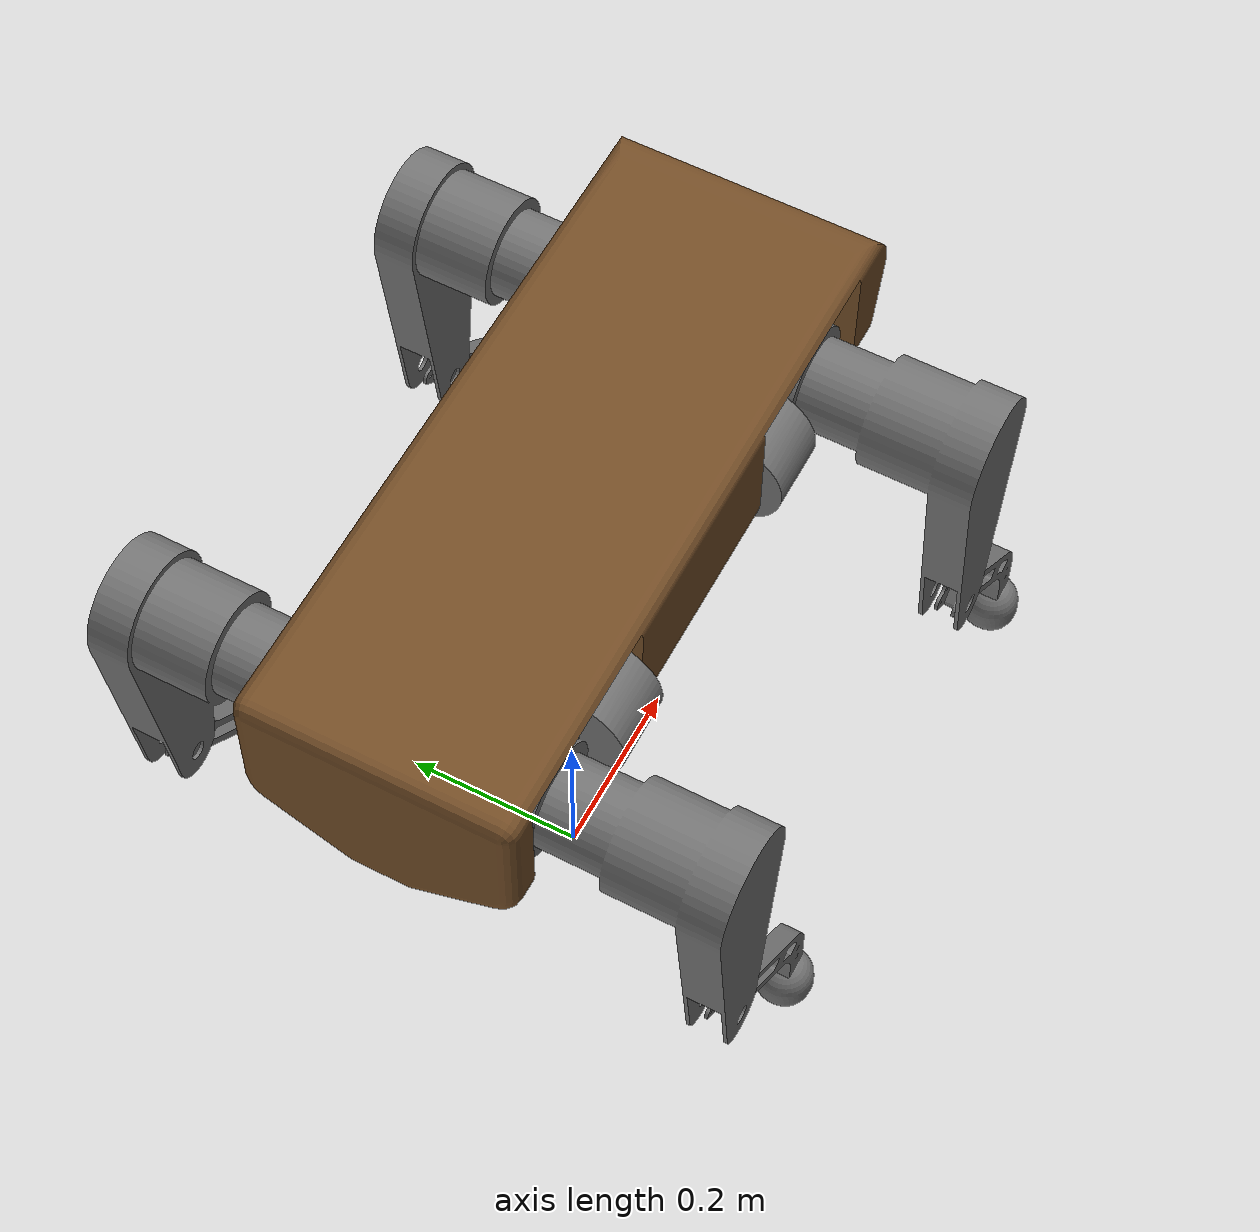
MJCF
<mujoco model="franki">
  <compiler angle="radian" meshdir="assets" texturedir="assets" autolimits="true"/>

  <option cone="elliptic" impratio="100"/>

  <default>
    <default class="franki">
      <geom friction="0.6" margin="0.001"/>
      <joint axis="0 1 0" damping="2" armature="0.01" frictionloss="0.2"/>
      <position kp="100" forcerange="-33.5 33.5"/>
      <default class="abduction">
        <joint axis="1 0 0" damping="1" range="-0.802851 0.802851"/>
        <position ctrlrange="-0.802851 0.802851"/>
      </default>
      <default class="hip">
        <joint range="-1.0472 1.3"/>
        <position ctrlrange="-1.0472 1.3"/>
      </default>
      <default class="knee">
        <joint range="-1.6 0.5"/>
        <position ctrlrange="-1.6 0.5"/>
      </default>
      <default class="visual">
        <geom type="mesh" contype="0" conaffinity="0" group="2" material="dark"/>
      </default>
      <default class="collision">
        <geom group="3" type="capsule"/>
        <default class="hip_left">
          <geom size="0.04 0.04" quat="1 1 0 0" type="cylinder" pos="0 0.055 0"/>
        </default>
        <default class="hip_right">
          <geom size="0.04 0.04" quat="1 1 0 0" type="cylinder" pos="0 -0.055 0"/>
        </default>
        <default class="thigh1">
          <geom size="0.015" fromto="-0.02 0 0 -0.02 0 -0.16"/>
        </default>
        <default class="thigh2">
          <geom size="0.015" fromto="0 0 0 -0.02 0 -0.1"/>
        </default>
        <default class="thigh3">
          <geom size="0.015" fromto="-0.02 0 -0.16 0 0 -0.2"/>
        </default>
        <default class="calf1">
          <geom size="0.01" fromto="0 0 0 0.02 0 -0.13"/>
        </default>
        <default class="calf2">
          <geom size="0.01" fromto="0.02 0 -0.13 0 0 -0.2"/>
        </default>
        <default class="foot">
          <geom type="sphere" size="0.035" pos="0.16 0 -0.247" priority="1" solimp="0.015 1 0.031" condim="6"
            friction="0.8 0.02 0.01"/>
        </default>
      </default>
    </default>
  </default>

  <asset>
    <material name="dark" specular="0" shininess="0.25" rgba="0.45 0.45 0.45 1"/>
    <texture type="2d" name="trunk_franki" file="trunk_franki.png"/>
    <material name="carbonfibre" texture="trunk_franki" specular="0" shininess="0.25"/>

    <mesh class="franki" file="calf_franki.obj"/>
    <mesh class="franki" file="hip_franki.obj"/>
    <mesh class="franki" file="thigh_franki.obj"/>
    <mesh class="franki" file="thigh_mirror_franki.obj"/>
    <mesh class="franki" file="trunk_franki.obj"/>
  </asset>

  <worldbody>
    <light name="spotlight" mode="targetbodycom" target="trunk" pos="0 -1 2"/>
    <body name="trunk" pos="0 0 0.63" childclass="franki">
      <freejoint/>
      <inertial mass="7.5" pos="0 0.0041 -0.0005"
        fullinertia="0.0158533 0.0377999 0.0456542 -3.66e-05 -6.11e-05 -2.75e-05"/>
      <geom class="visual" mesh="trunk_franki" material="carbonfibre"/>
      <geom class="collision" mesh="trunk_franki"/>
      <body name="FR_hip" pos="0.255 -0.105 0">
        <inertial mass="0.7" pos="-0.003311 -0.000635 3.1e-05" quat="0.507528 0.506268 0.491507 0.494499"
          diaginertia="0.000807752 0.00055293 0.000468983"/>
        <joint class="abduction" name="FR_hip_joint"/>
        <geom class="visual" mesh="hip_franki" quat="0 1 0 0"/>
        <geom class="collision" mesh="hip_franki" quat="0 1 0 0"/>
        <body name="FR_thigh" pos="0 -0.193 0">
          <inertial mass="1.5" pos="-0.003237 0.022327 -0.027326" quat="0.999125 -0.00256393 -0.0409531 -0.00806091"
            diaginertia="0.00555739 0.00513936 0.00133944"/>
          <joint class="hip" name="FR_thigh_joint"/>
          <geom class="visual" mesh="thigh_mirror_franki"/>
          <geom class="collision" mesh="thigh_mirror_franki"/>
          <body name="FR_calf" pos="0 0 -0.2575">
            <inertial mass="0.226" pos="0.00472659 0 -0.131975" quat="0.706886 0.017653 0.017653 0.706886"
              diaginertia="0.00340344 0.00339393 3.54834e-05"/>
            <joint class="knee" name="FR_calf_joint"/>
            <geom class="visual" mesh="calf_franki"/>
            <geom class="foot"/>
          </body>
        </body>
      </body>
      <body name="FL_hip" pos="0.255 0.105 0">
        <inertial mass="0.7" pos="-0.003311 0.000635 3.1e-05" quat="0.494499 0.491507 0.506268 0.507528"
          diaginertia="0.000807752 0.00055293 0.000468983"/>
        <joint class="abduction" name="FL_hip_joint"/>
        <geom class="visual" mesh="hip_franki"/>
        <geom class="collision" mesh="hip_franki"/>
        <geom class="collision" size="0.04 0.04" pos="0 0.055 0" quat="1 1 0 0" type="cylinder"/>
        <body name="FL_thigh" pos="0 0.193 0">
          <inertial mass="1.5" pos="-0.003237 -0.022327 -0.027326" quat="0.999125 0.00256393 -0.0409531 0.00806091"
            diaginertia="0.00555739 0.00513936 0.00133944"/>
          <joint class="hip" name="FL_thigh_joint"/>
          <geom class="visual" mesh="thigh_franki"/>
          <geom class="collision" mesh="thigh_franki"/>
          <body name="FL_calf" pos="0 0 -0.2575">
            <inertial mass="0.226" pos="0.00472659 0 -0.131975" quat="0.706886 0.017653 0.017653 0.706886"
              diaginertia="0.00340344 0.00339393 3.54834e-05"/>
            <joint class="knee" name="FL_calf_joint"/>
            <geom class="visual" mesh="calf_franki"/>
            <geom class="foot"/>

          </body>
        </body>
      </body>
      <body name="RR_hip" pos="-0.255 -0.105 0">
        <inertial mass="0.7" pos="0.003311 -0.000635 3.1e-05" quat="0.491507 0.494499 0.507528 0.506268"
          diaginertia="0.000807752 0.00055293 0.000468983"/>
        <joint class="abduction" name="RR_hip_joint"/>
        <geom class="visual" quat="0 0 0 -1" mesh="hip_franki"/>
        <geom class="collision" quat="0 0 0 -1" mesh="hip_franki"/>
        <body name="RR_thigh" pos="0 -0.193 0">
          <inertial mass="1.5" pos="-0.003237 0.022327 -0.027326" quat="0.999125 -0.00256393 -0.0409531 -0.00806091"
            diaginertia="0.00555739 0.00513936 0.00133944"/>
          <joint class="hip" name="RR_thigh_joint"/>
          <geom class="visual" mesh="thigh_mirror_franki"/>
          <geom class="collision" mesh="thigh_mirror_franki"/>
          <body name="RR_calf" pos="0 0 -0.2575">
            <inertial mass="0.226" pos="0.00472659 0 -0.131975" quat="0.706886 0.017653 0.017653 0.706886"
              diaginertia="0.00340344 0.00339393 3.54834e-05"/>
            <joint class="knee" name="RR_calf_joint"/>
            <geom class="visual" mesh="calf_franki"/>
            <geom class="foot"/>
          </body>
        </body>
      </body>
      <body name="RL_hip" pos="-0.255 0.105 0">
        <inertial mass="0.7" pos="0.003311 0.000635 3.1e-05" quat="0.506268 0.507528 0.494499 0.491507"
          diaginertia="0.000807752 0.00055293 0.000468983"/>
        <joint class="abduction" name="RL_hip_joint"/>
        <geom class="visual" quat="0 0 1 0" mesh="hip_franki"/>
        <geom class="collision" quat="0 0 1 0" mesh="hip_franki"/>
        <body name="RL_thigh" pos="0 0.193 0">
          <inertial mass="1.5" pos="-0.003237 -0.022327 -0.027326" quat="0.999125 0.00256393 -0.0409531 0.00806091"
            diaginertia="0.00555739 0.00513936 0.00133944"/>
          <joint class="hip" name="RL_thigh_joint"/>
          <geom class="visual" mesh="thigh_franki"/>
          <geom class="collision" mesh="thigh_franki"/>
          <body name="RL_calf" pos="0 0 -0.2575">
            <inertial mass="0.226" pos="0.00472659 0 -0.131975" quat="0.706886 0.017653 0.017653 0.706886"
              diaginertia="0.00340344 0.00339393 3.54834e-05"/>
            <joint class="knee" name="RL_calf_joint"/>
            <geom class="visual" mesh="calf_franki"/>
            <geom class="foot"/>
          </body>
        </body>
      </body>
    </body>
  </worldbody>

  <actuator>
    <position class="abduction" name="FR_hip" joint="FR_hip_joint"/>
    <position class="hip" name="FR_thigh" joint="FR_thigh_joint"/>
    <position class="knee" name="FR_calf" joint="FR_calf_joint"/>
    <position class="abduction" name="FL_hip" joint="FL_hip_joint"/>
    <position class="hip" name="FL_thigh" joint="FL_thigh_joint"/>
    <position class="knee" name="FL_calf" joint="FL_calf_joint"/>
    <position class="abduction" name="RR_hip" joint="RR_hip_joint"/>
    <position class="hip" name="RR_thigh" joint="RR_thigh_joint"/>
    <position class="knee" name="RR_calf" joint="RR_calf_joint"/>
    <position class="abduction" name="RL_hip" joint="RL_hip_joint"/>
    <position class="hip" name="RL_thigh" joint="RL_thigh_joint"/>
    <position class="knee" name="RL_calf" joint="RL_calf_joint"/>
  </actuator>

  <keyframe>
    <key name="home" qpos="0 0 0.27 1 0 0 0 0 0.9 -1.8 0 0.9 -1.8 0 0.9 -1.8 0 0.9 -1.8"
      ctrl="0 0.9 -1.8 0 0.9 -1.8 0 0.9 -1.8 0 0.9 -1.8"/>
  </keyframe>
</mujoco>
